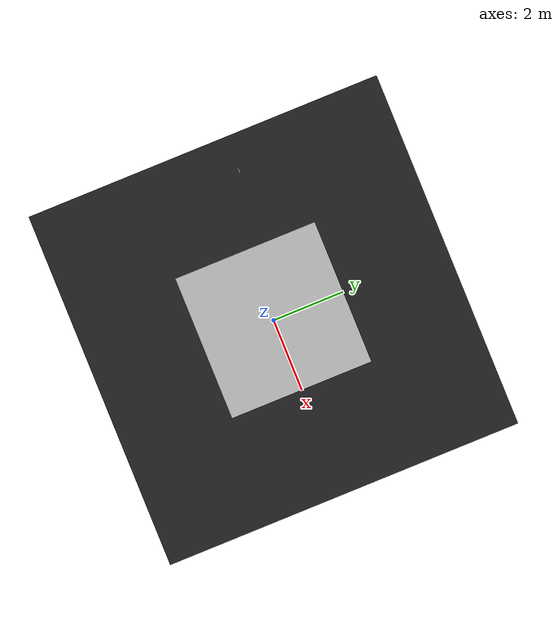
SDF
<sdf version="1.6">
 <world name="default">
  <scene>
   <ambient>0 0 0 1</ambient>
   <shadows>0</shadows>
   <grid>0</grid>
   <background>0.7 0.7 0.7 1</background>
  </scene>
  <include><uri>model://course</uri><scale>3 3 3</scale></include>
  <include><uri>model://traffic_stop</uri><pose>-4 0.65 0.125 0 -0 0</pose></include>
  <light name="sun" type="directional">
   <pose>0 0 10 0 -0 0</pose>
   <diffuse>0.8 0.8 0.8 1</diffuse>
   <specular>0.1 0.1 0.1 1</specular>
   <attenuation>
    <range>1000</range>
    <constant>0.9</constant>
    <linear>0.01</linear>
    <quadratic>0.001</quadratic>
   </attenuation>
   <direction>-0.5 0.5 -1</direction>
  </light>
  <model name="ground2">
   <pose>0 0 -0.1 0 -0 0</pose>
   <static>1</static>
   <link name="ground">
    <collision name="ground_coll"><geometry><box><size>8 8 0.01</size></box></geometry></collision>
    <visual name="ground_vis">
     <geometry><box><size>10 10 0.01</size></box></geometry>
     <material>
      <script><uri>file://media/materials/scripts/gazebo.material</uri><name>Gazebo/FlatBlack</name></script>
     </material>
    </visual>
   </link>
  </model>
  <gravity>0 0 -9.8</gravity>
  <magnetic_field>6e-06 2.3e-05 -4.2e-05</magnetic_field>
  <atmosphere type="adiabatic"/>
  <physics name="default_physics" default="0" type="ode">
   <max_step_size>0.001</max_step_size>
   <real_time_factor>0.7</real_time_factor>
   <real_time_update_rate>1000</real_time_update_rate>
  </physics>
  <spherical_coordinates>
   <surface_model>EARTH_WGS84</surface_model>
   <latitude_deg>0</latitude_deg>
   <longitude_deg>0</longitude_deg>
   <elevation>0</elevation>
   <heading_deg>0</heading_deg>
  </spherical_coordinates>
  <light name="user_point_light_2" type="point">
   <pose>-0.948146 0.604519 1 0 -0 0</pose>
   <diffuse>0.5 0.5 0.5 1</diffuse>
   <specular>0.1 0.1 0.1 1</specular>
   <attenuation>
    <range>20</range>
    <constant>0.5</constant>
    <linear>0.01</linear>
    <quadratic>0.001</quadratic>
   </attenuation>
   <cast_shadows>0</cast_shadows>
   <direction>0 0 -1</direction>
  </light>
  <light name="user_point_light_6" type="point">
   <pose>1.63854 1.69565 1 0 -0 0</pose>
   <diffuse>0.5 0.5 0.5 1</diffuse>
   <specular>0.1 0.1 0.1 1</specular>
   <attenuation>
    <range>20</range>
    <constant>0.5</constant>
    <linear>0.01</linear>
    <quadratic>0.001</quadratic>
   </attenuation>
   <cast_shadows>0</cast_shadows>
   <direction>0 0 -1</direction>
  </light>
  <light name="user_point_light_8" type="point">
   <pose>-1.8 1.5 1 0 -0 0</pose>
   <diffuse>0.5 0.5 0.5 1</diffuse>
   <specular>0.1 0.1 0.1 1</specular>
   <attenuation>
    <range>20</range>
    <constant>0.5</constant>
    <linear>0.01</linear>
    <quadratic>0.001</quadratic>
   </attenuation>
   <cast_shadows>0</cast_shadows>
   <direction>0 0 -1</direction>
  </light>
 </world>
</sdf>

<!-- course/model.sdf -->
<sdf version="1.6">
  <model name="course">
    <static>true</static>
    <link name="course_link">
      <collision name="course_collision">
        <geometry>
          <plane>
            <normal>0 0 1</normal>
            <size>4 4</size>
          </plane>
        </geometry>
        <surface>
          <friction>
            <ode>
              <mu>100</mu>
              <mu2>50</mu2>
            </ode>
          </friction>
        </surface>
      </collision>
      <visual name="course_visual">
        <cast_shadows>false</cast_shadows>
        <geometry>
	        <plane>
            <normal>0 0 1</normal>
            <size>4 4</size>
          </plane>
        </geometry>
	      <material>
          <script>
            <uri>model://turtlebot3_autorace/course/materials/scripts</uri>
            <uri>model://turtlebot3_autorace/course/materials/textures</uri>
            <name>course</name>
          </script>
        </material>
      </visual>
    </link>
  </model>
</sdf>

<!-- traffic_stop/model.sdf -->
<sdf version="1.6">
  <model name="traffic_stop">
    <static>true</static>
    <link name="box">
      <pose>0 0 0 0 0 0</pose>
      <collision name="collision">
        <geometry>
          <box>
            <size>0.12 0.025 0.25</size>
          </box>
        </geometry>
      </collision>
      <visual name="visual">
        <geometry>
          <box>
            <size>0.12 0.025 0.25</size>
          </box>
        </geometry>
        <material>
          <script>
            <uri>model://turtlebot3_autorace/traffic_stop/materials/scripts</uri>
            <uri>model://turtlebot3_autorace/traffic_stop/materials/textures</uri>
            <name>traffic_stop</name>
          </script>
        </material>
      </visual>
    </link>
  </model>
</sdf>
